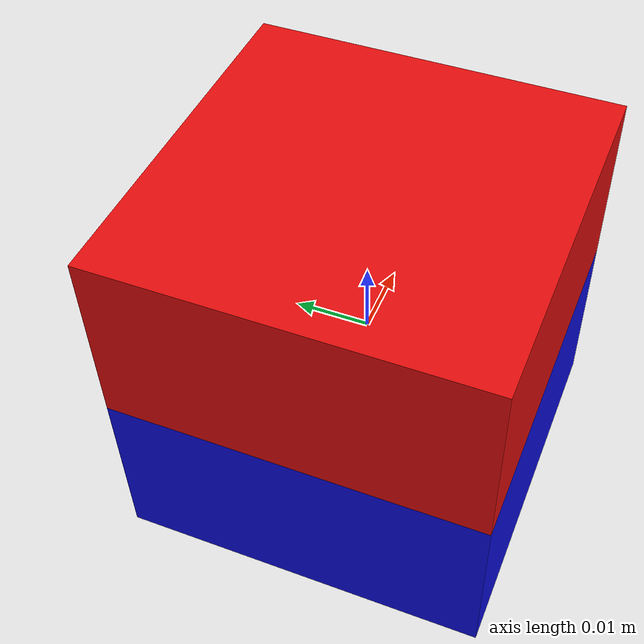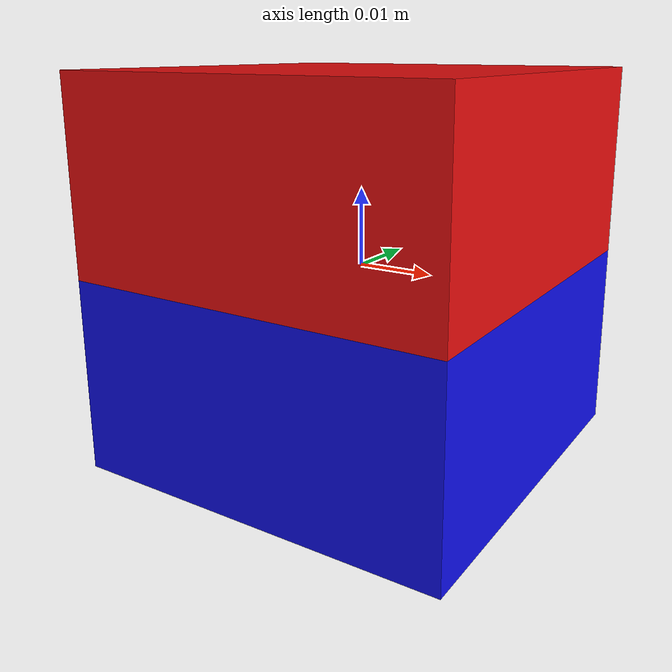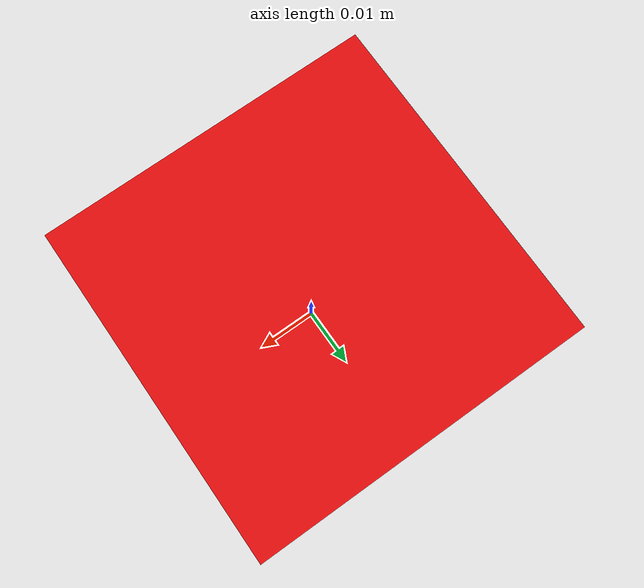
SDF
<?xml version="1.0" ?>

<sdf version="1.6">
  <model name="block_red_blue">
    <static>true</static>
    <link name="link">

      <collision name="collision_top">
        <pose>0 0 0.0125 0 0 0</pose>
        <geometry><box><size>0.05 0.05 0.025</size></box></geometry>
      </collision>
      <visual name="visual_top">
        <pose>0 0 0.0125 0 0 0</pose>
        <geometry><box><size>0.05 0.05 0.025</size></box></geometry>
        <material>
          <ambient>0.75 0.0 0.0 1</ambient>
          <diffuse>0.90 0.05 0.05 1</diffuse>
          <specular>0.05 0.05 0.05 1</specular>
          <emissive>0.20 0.0 0.0 1</emissive>
        </material>
      </visual>

      <collision name="collision_bottom">
        <pose>0 0 -0.0125 0 0 0</pose>
        <geometry><box><size>0.05 0.05 0.025</size></box></geometry>
      </collision>
      <visual name="visual_bottom">
        <pose>0 0 -0.0125 0 0 0</pose>
        <geometry><box><size>0.05 0.05 0.025</size></box></geometry>
        <material>
          <ambient>0.0 0.0 0.75 1</ambient>
          <diffuse>0.05 0.05 0.90 1</diffuse>
          <specular>0.05 0.05 0.05 1</specular>
          <emissive>0.0 0.0 0.20 1</emissive>
        </material>
      </visual>

    </link>
  </model>
</sdf>
